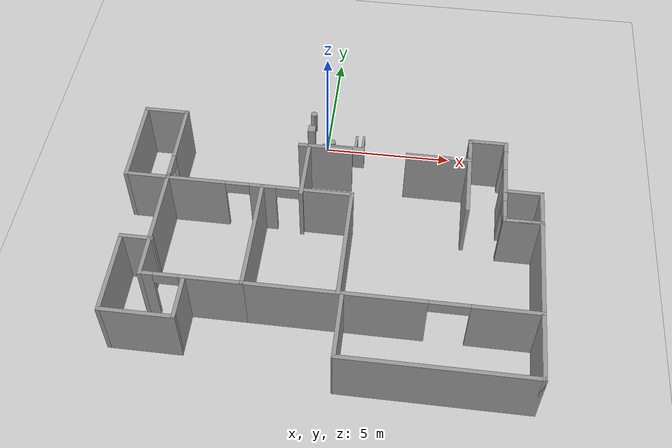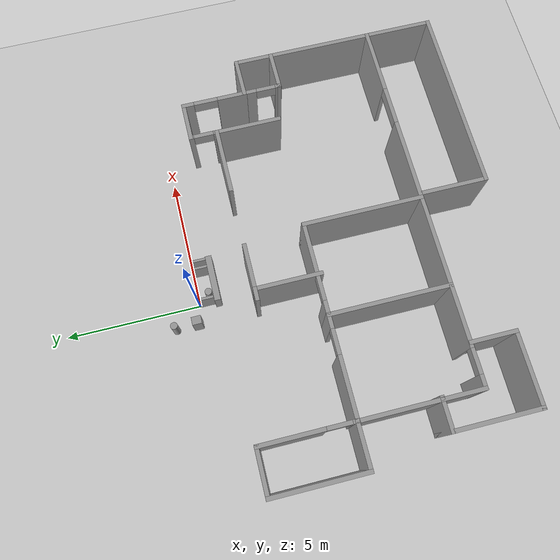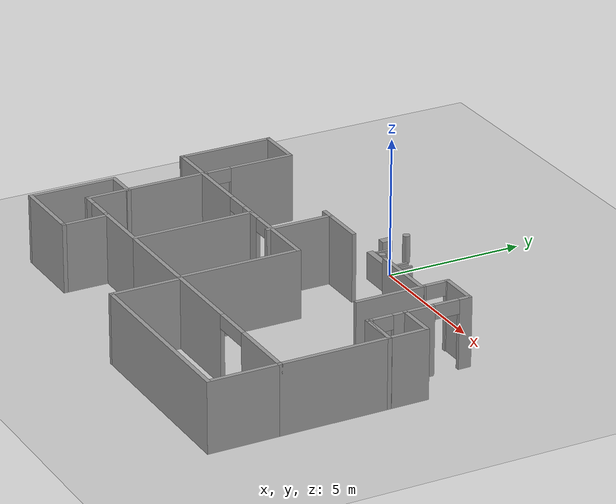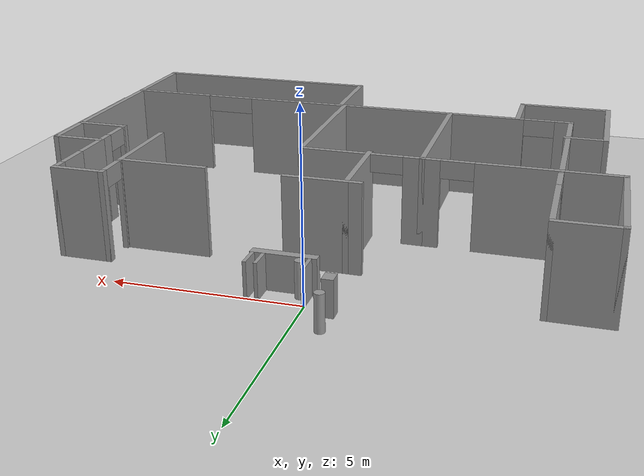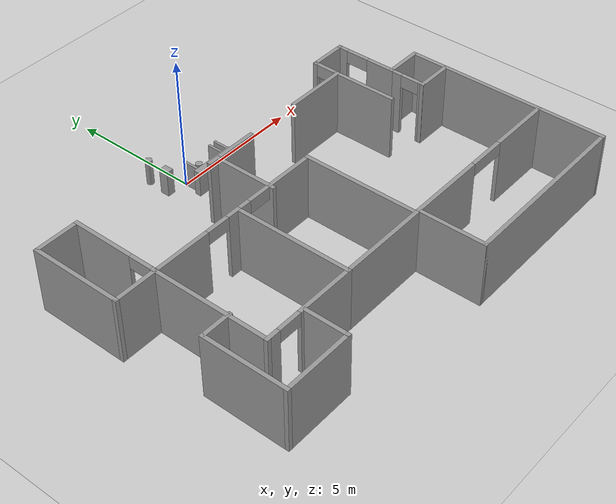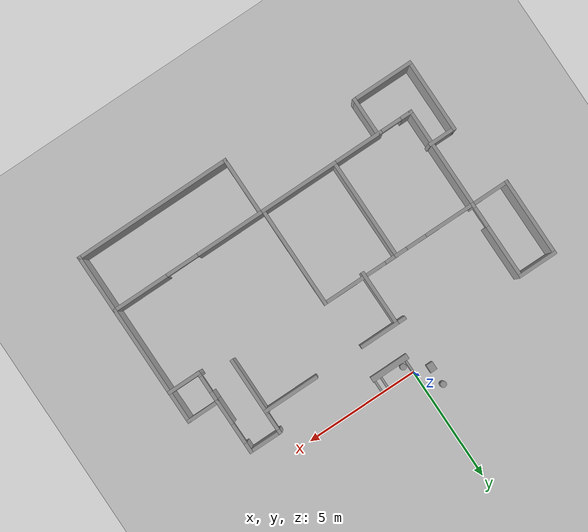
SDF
<sdf version="1.9">
 <world name="default">
  <model name="ground_plane">
   <static>true</static>
   <link name="link">
    <collision name="collision">
     <geometry><plane><normal>0 0 1</normal><size>100 100</size></plane></geometry>
     <surface><friction><ode><mu>100</mu><mu2>50</mu2></ode></friction></surface>
    </collision>
    <visual name="visual">
     <cast_shadows>false</cast_shadows>
     <geometry><plane><normal>0 0 1</normal><size>100 100</size></plane></geometry>
     <material>
      <script><uri>file://media/materials/scripts/gazebo.material</uri><name>Gazebo/Grey</name></script>
     </material>
    </visual>
   </link>
  </model>
  <model name="cma_varanda1">
   <pose>-6.3251799999999996 -2.5931299999999999 0 0 0 0</pose>
   <link name="Wall_0">
    <pose>0.80000000000000004 0 0 0 0 -1.5708</pose>
    <visual name="Wall_0_Visual_0">
     <pose>-0.55249999999999999 0 1.25 0 0 0</pose>
     <geometry><box><size>2.395 0.14999999999999999 2.5</size></box></geometry>
     <material>
      <script><uri>file://media/materials/scripts/gazebo.material</uri><name>Gazebo/Grey</name></script>
      <ambient>1 1 1 1</ambient>
     </material>
    </visual>
    <collision name="Wall_0_Collision_0">
     <geometry><box><size>2.395 0.14999999999999999 2.5</size></box></geometry>
     <pose>-0.55249999999999999 0 1.25 0 0 0</pose>
    </collision>
    <visual name="Wall_0_Visual_1">
     <pose>1.6375 0 1.25 0 0 0</pose>
     <geometry><box><size>0.22500000000000001 0.14999999999999999 2.5</size></box></geometry>
     <material>
      <script><uri>file://media/materials/scripts/gazebo.material</uri><name>Gazebo/Grey</name></script>
      <ambient>1 1 1 1</ambient>
     </material>
    </visual>
    <collision name="Wall_0_Collision_1">
     <geometry><box><size>0.22500000000000001 0.14999999999999999 2.5</size></box></geometry>
     <pose>1.6375 0 1.25 0 0 0</pose>
    </collision>
    <visual name="Wall_0_Visual_2">
     <pose>1.085 0 2.25 0 0 0</pose>
     <geometry><box><size>0.88 0.14999999999999999 0.5</size></box></geometry>
     <material>
      <script><uri>file://media/materials/scripts/gazebo.material</uri><name>Gazebo/Grey</name></script>
      <ambient>1 1 1 1</ambient>
     </material>
    </visual>
    <collision name="Wall_0_Collision_2">
     <geometry><box><size>0.88 0.14999999999999999 0.5</size></box></geometry>
     <pose>1.085 0 2.25 0 0 0</pose>
    </collision>
   </link>
   <link name="Wall_1">
    <collision name="Wall_1_Collision">
     <geometry><box><size>1.75 0.14999999999999999 2.5</size></box></geometry>
     <pose>0 0 1.25 0 0 0</pose>
    </collision>
    <visual name="Wall_1_Visual">
     <pose>0 0 1.25 0 0 0</pose>
     <geometry><box><size>1.75 0.14999999999999999 2.5</size></box></geometry>
     <material>
      <script><uri>file://media/materials/scripts/gazebo.material</uri><name>Gazebo/Grey</name></script>
      <ambient>1 1 1 1</ambient>
     </material>
    </visual>
    <pose>0 -1.675 0 0 0 3.1415899999999999</pose>
   </link>
   <link name="Wall_2">
    <collision name="Wall_2_Collision">
     <geometry><box><size>3.5 0.14999999999999999 2.5</size></box></geometry>
     <pose>0 0 1.25 0 0 0</pose>
    </collision>
    <visual name="Wall_2_Visual">
     <pose>0 0 1.25 0 0 0</pose>
     <geometry><box><size>3.5 0.14999999999999999 2.5</size></box></geometry>
     <material>
      <script><uri>file://media/materials/scripts/gazebo.material</uri><name>Gazebo/Grey</name></script>
      <ambient>1 1 1 1</ambient>
     </material>
    </visual>
    <pose>-0.80000000000000004 0 0 0 0 1.5708</pose>
   </link>
   <link name="Wall_3">
    <collision name="Wall_3_Collision">
     <geometry><box><size>1.75 0.14999999999999999 2.5</size></box></geometry>
     <pose>0 0 1.25 0 0 0</pose>
    </collision>
    <visual name="Wall_3_Visual">
     <pose>0 0 1.25 0 0 0</pose>
     <geometry><box><size>1.75 0.14999999999999999 2.5</size></box></geometry>
     <material>
      <script><uri>file://media/materials/scripts/gazebo.material</uri><name>Gazebo/Grey</name></script>
      <ambient>1 1 1 1</ambient>
     </material>
    </visual>
    <pose>0 1.675 0 0 0 0</pose>
   </link>
   <static>true</static>
  </model>
  <model name="cma_quartos">
   <pose>-2.58169 -7.2645600000000004 0 0 0 0</pose>
   <link name="Wall_0">
    <collision name="Wall_0_Collision">
     <geometry><box><size>4.5 0.14999999999999999 2.5</size></box></geometry>
     <pose>0 0 1.25 0 0 0</pose>
    </collision>
    <visual name="Wall_0_Visual">
     <pose>0 0 1.25 0 0 0</pose>
     <geometry><box><size>4.5 0.14999999999999999 2.5</size></box></geometry>
     <material>
      <script><uri>file://media/materials/scripts/gazebo.material</uri><name>Gazebo/Grey</name></script>
      <ambient>1 1 1 1</ambient>
     </material>
    </visual>
    <pose>0.64500000000000002 0.81000000000000005 0 0 0 -1.5708</pose>
   </link>
   <link name="Wall_1">
    <pose>-1.155 -1.365 0 0 0 3.1415899999999999</pose>
    <visual name="Wall_1_Visual_0">
     <pose>-0.72250000000000003 0 1.25 0 0 0</pose>
     <geometry><box><size>2.3050000000000002 0.14999999999999999 2.5</size></box></geometry>
     <material>
      <script><uri>file://media/materials/scripts/gazebo.material</uri><name>Gazebo/Grey</name></script>
      <ambient>1 1 1 1</ambient>
     </material>
    </visual>
    <collision name="Wall_1_Collision_0">
     <geometry><box><size>2.3050000000000002 0.14999999999999999 2.5</size></box></geometry>
     <pose>-0.72250000000000003 0 1.25 0 0 0</pose>
    </collision>
    <visual name="Wall_1_Visual_1">
     <pose>1.6025 0 1.25 0 0 0</pose>
     <geometry><box><size>0.54500000000000004 0.14999999999999999 2.5</size></box></geometry>
     <material>
      <script><uri>file://media/materials/scripts/gazebo.material</uri><name>Gazebo/Grey</name></script>
      <ambient>1 1 1 1</ambient>
     </material>
    </visual>
    <collision name="Wall_1_Collision_1">
     <geometry><box><size>0.54500000000000004 0.14999999999999999 2.5</size></box></geometry>
     <pose>1.6025 0 1.25 0 0 0</pose>
    </collision>
    <visual name="Wall_1_Visual_2">
     <pose>0.88 0 2.25 0 0 0</pose>
     <geometry><box><size>0.90000000000000002 0.14999999999999999 0.5</size></box></geometry>
     <material>
      <script><uri>file://media/materials/scripts/gazebo.material</uri><name>Gazebo/Grey</name></script>
      <ambient>1 1 1 1</ambient>
     </material>
    </visual>
    <collision name="Wall_1_Collision_2">
     <geometry><box><size>0.90000000000000002 0.14999999999999999 0.5</size></box></geometry>
     <pose>0.88 0 2.25 0 0 0</pose>
    </collision>
   </link>
   <link name="Wall_10">
    <collision name="Wall_10_Collision">
     <geometry><box><size>1.75 0.14999999999999999 2.5</size></box></geometry>
     <pose>0 0 1.25 0 0 0</pose>
    </collision>
    <visual name="Wall_10_Visual">
     <pose>0 0 1.25 0 0 0</pose>
     <geometry><box><size>1.75 0.14999999999999999 2.5</size></box></geometry>
     <material>
      <script><uri>file://media/materials/scripts/gazebo.material</uri><name>Gazebo/Grey</name></script>
      <ambient>1 1 1 1</ambient>
     </material>
    </visual>
    <pose>-1.395 -2.1850000000000001 0 0 0 -1.5708</pose>
   </link>
   <link name="Wall_11">
    <collision name="Wall_11_Collision">
     <geometry><box><size>2.75 0.14999999999999999 2.5</size></box></geometry>
     <pose>0 0 1.25 0 0 0</pose>
    </collision>
    <visual name="Wall_11_Visual">
     <pose>0 0 1.25 0 0 0</pose>
     <geometry><box><size>2.75 0.14999999999999999 2.5</size></box></geometry>
     <material>
      <script><uri>file://media/materials/scripts/gazebo.material</uri><name>Gazebo/Grey</name></script>
      <ambient>1 1 1 1</ambient>
     </material>
    </visual>
    <pose>-2.6949999999999998 -2.9849999999999999 0 0 0 3.1415899999999999</pose>
   </link>
   <link name="Wall_12">
    <collision name="Wall_12_Collision">
     <geometry><box><size>3.25 0.14999999999999999 2.5</size></box></geometry>
     <pose>0 0 1.25 0 0 0</pose>
    </collision>
    <visual name="Wall_12_Visual">
     <pose>0 0 1.25 0 0 0</pose>
     <geometry><box><size>3.25 0.14999999999999999 2.5</size></box></geometry>
     <material>
      <script><uri>file://media/materials/scripts/gazebo.material</uri><name>Gazebo/Grey</name></script>
      <ambient>1 1 1 1</ambient>
     </material>
    </visual>
    <pose>-3.9950000000000001 -1.4350000000000001 0 0 0 1.5708</pose>
   </link>
   <link name="Wall_13">
    <collision name="Wall_13_Collision">
     <geometry><box><size>1.25 0.14999999999999999 2.5</size></box></geometry>
     <pose>0 0 1.25 0 0 0</pose>
    </collision>
    <visual name="Wall_13_Visual">
     <pose>0 0 1.25 0 0 0</pose>
     <geometry><box><size>1.25 0.14999999999999999 2.5</size></box></geometry>
     <material>
      <script><uri>file://media/materials/scripts/gazebo.material</uri><name>Gazebo/Grey</name></script>
      <ambient>1 1 1 1</ambient>
     </material>
    </visual>
    <pose>-3.4449999999999998 0.115 0 0 0 0</pose>
   </link>
   <link name="Wall_2">
    <collision name="Wall_2_Collision">
     <geometry><box><size>4.5 0.14999999999999999 2.5</size></box></geometry>
     <pose>0 0 1.25 0 0 0</pose>
    </collision>
    <visual name="Wall_2_Visual">
     <pose>0 0 1.25 0 0 0</pose>
     <geometry><box><size>4.5 0.14999999999999999 2.5</size></box></geometry>
     <material>
      <script><uri>file://media/materials/scripts/gazebo.material</uri><name>Gazebo/Grey</name></script>
      <ambient>1 1 1 1</ambient>
     </material>
    </visual>
    <pose>-2.9550000000000001 0.81000000000000005 0 0 0 1.5708</pose>
   </link>
   <link name="Wall_3">
    <pose>-1.155 2.9849999999999999 0 0 0 0</pose>
    <visual name="Wall_3_Visual_0">
     <pose>-0.73250000000000004 0 1.25 0 0 0</pose>
     <geometry><box><size>2.2850000000000001 0.14999999999999999 2.5</size></box></geometry>
     <material>
      <script><uri>file://media/materials/scripts/gazebo.material</uri><name>Gazebo/Grey</name></script>
      <ambient>1 1 1 1</ambient>
     </material>
    </visual>
    <collision name="Wall_3_Collision_0">
     <geometry><box><size>2.2850000000000001 0.14999999999999999 2.5</size></box></geometry>
     <pose>-0.73250000000000004 0 1.25 0 0 0</pose>
    </collision>
    <visual name="Wall_3_Visual_1">
     <pose>1.5925 0 1.25 0 0 0</pose>
     <geometry><box><size>0.56499999999999995 0.14999999999999999 2.5</size></box></geometry>
     <material>
      <script><uri>file://media/materials/scripts/gazebo.material</uri><name>Gazebo/Grey</name></script>
      <ambient>1 1 1 1</ambient>
     </material>
    </visual>
    <collision name="Wall_3_Collision_1">
     <geometry><box><size>0.56499999999999995 0.14999999999999999 2.5</size></box></geometry>
     <pose>1.5925 0 1.25 0 0 0</pose>
    </collision>
    <visual name="Wall_3_Visual_2">
     <pose>0.85999999999999999 0 2.25 0 0 0</pose>
     <geometry><box><size>0.90000000000000002 0.14999999999999999 0.5</size></box></geometry>
     <material>
      <script><uri>file://media/materials/scripts/gazebo.material</uri><name>Gazebo/Grey</name></script>
      <ambient>1 1 1 1</ambient>
     </material>
    </visual>
    <collision name="Wall_3_Collision_2">
     <geometry><box><size>0.90000000000000002 0.14999999999999999 0.5</size></box></geometry>
     <pose>0.85999999999999999 0 2.25 0 0 0</pose>
    </collision>
   </link>
   <link name="Wall_6">
    <pose>2.3199999999999998 2.9849999999999999 0 0 0 0</pose>
    <visual name="Wall_6_Visual_0">
     <pose>-1.4575 0 1.25 0 0 0</pose>
     <geometry><box><size>0.58499999999999996 0.14999999999999999 2.5</size></box></geometry>
     <material>
      <script><uri>file://media/materials/scripts/gazebo.material</uri><name>Gazebo/Grey</name></script>
      <ambient>1 1 1 1</ambient>
     </material>
    </visual>
    <collision name="Wall_6_Collision_0">
     <geometry><box><size>0.58499999999999996 0.14999999999999999 2.5</size></box></geometry>
     <pose>-1.4575 0 1.25 0 0 0</pose>
    </collision>
    <visual name="Wall_6_Visual_1">
     <pose>0.74250000000000005 0 1.25 0 0 0</pose>
     <geometry><box><size>2.0150000000000001 0.14999999999999999 2.5</size></box></geometry>
     <material>
      <script><uri>file://media/materials/scripts/gazebo.material</uri><name>Gazebo/Grey</name></script>
      <ambient>1 1 1 1</ambient>
     </material>
    </visual>
    <collision name="Wall_6_Collision_1">
     <geometry><box><size>2.0150000000000001 0.14999999999999999 2.5</size></box></geometry>
     <pose>0.74250000000000005 0 1.25 0 0 0</pose>
    </collision>
    <visual name="Wall_6_Visual_2">
     <pose>-0.71499999999999997 0 2.25 0 0 0</pose>
     <geometry><box><size>0.90000000000000002 0.14999999999999999 0.5</size></box></geometry>
     <material>
      <script><uri>file://media/materials/scripts/gazebo.material</uri><name>Gazebo/Grey</name></script>
      <ambient>1 1 1 1</ambient>
     </material>
    </visual>
    <collision name="Wall_6_Collision_2">
     <geometry><box><size>0.90000000000000002 0.14999999999999999 0.5</size></box></geometry>
     <pose>-0.71499999999999997 0 2.25 0 0 0</pose>
    </collision>
   </link>
   <link name="Wall_7">
    <collision name="Wall_7_Collision">
     <geometry><box><size>4.5 0.14999999999999999 2.5</size></box></geometry>
     <pose>0 0 1.25 0 0 0</pose>
    </collision>
    <visual name="Wall_7_Visual">
     <pose>0 0 1.25 0 0 0</pose>
     <geometry><box><size>4.5 0.14999999999999999 2.5</size></box></geometry>
     <material>
      <script><uri>file://media/materials/scripts/gazebo.material</uri><name>Gazebo/Grey</name></script>
      <ambient>1 1 1 1</ambient>
     </material>
    </visual>
    <pose>3.9950000000000001 0.81000000000000005 0 0 0 -1.5708</pose>
   </link>
   <link name="Wall_8">
    <collision name="Wall_8_Collision">
     <geometry><box><size>3.5 0.14999999999999999 2.5</size></box></geometry>
     <pose>0 0 1.25 0 0 0</pose>
    </collision>
    <visual name="Wall_8_Visual">
     <pose>0 0 1.25 0 0 0</pose>
     <geometry><box><size>3.5 0.14999999999999999 2.5</size></box></geometry>
     <material>
      <script><uri>file://media/materials/scripts/gazebo.material</uri><name>Gazebo/Grey</name></script>
      <ambient>1 1 1 1</ambient>
     </material>
    </visual>
    <pose>2.3199999999999998 -1.365 0 0 0 3.1415899999999999</pose>
   </link>
   <static>true</static>
  </model>
  <model name="cma_parede_t">
   <pose>0.15995500000000001 -3.2401599999999999 0 0 0 0</pose>
   <link name="Wall_15">
    <collision name="Wall_15_Collision">
     <geometry><box><size>2.5 0.14999999999999999 2.5</size></box></geometry>
     <pose>0 0 1.25 0 0 0</pose>
    </collision>
    <visual name="Wall_15_Visual">
     <pose>0 0 1.25 0 0 0</pose>
     <geometry><box><size>2.5 0.14999999999999999 2.5</size></box></geometry>
     <material>
      <script><uri>file://media/materials/scripts/gazebo.material</uri><name>Gazebo/Grey</name></script>
      <ambient>1 1 1 1</ambient>
     </material>
    </visual>
    <pose>-0.625 0 0 0 0 1.5708</pose>
   </link>
   <link name="Wall_16">
    <collision name="Wall_16_Collision">
     <geometry><box><size>0.5 0.14999999999999999 2.5</size></box></geometry>
     <pose>0 0 1.25 0 0 0</pose>
    </collision>
    <visual name="Wall_16_Visual">
     <pose>0 0 1.25 0 0 0</pose>
     <geometry><box><size>0.5 0.14999999999999999 2.5</size></box></geometry>
     <material>
      <script><uri>file://media/materials/scripts/gazebo.material</uri><name>Gazebo/Grey</name></script>
      <ambient>1 1 1 1</ambient>
     </material>
    </visual>
    <pose>-0.80000000000000004 1.175 0 0 0 3.1415899999999999</pose>
   </link>
   <link name="Wall_18">
    <collision name="Wall_18_Collision">
     <geometry><box><size>1.75 0.14999999999999999 2.5</size></box></geometry>
     <pose>0 0 1.25 0 0 0</pose>
    </collision>
    <visual name="Wall_18_Visual">
     <pose>0 0 1.25 0 0 0</pose>
     <geometry><box><size>1.75 0.14999999999999999 2.5</size></box></geometry>
     <material>
      <script><uri>file://media/materials/scripts/gazebo.material</uri><name>Gazebo/Grey</name></script>
      <ambient>1 1 1 1</ambient>
     </material>
    </visual>
    <pose>0.17499999999999999 1.175 0 0 0 0</pose>
   </link>
   <static>true</static>
  </model>
  <model name="cma_parede_L">
   <pose>4.97628 -6.6999199999999997 0 0 0 0</pose>
   <link name="Wall_0">
    <pose>0 -1.925 0 0 0 0</pose>
    <visual name="Wall_0_Visual_0">
     <pose>-1.9850000000000001 0 1.25 0 0 0</pose>
     <geometry><box><size>3.0299999999999998 0.14999999999999999 2.5</size></box></geometry>
     <material>
      <script><uri>file://media/materials/scripts/gazebo.material</uri><name>Gazebo/Grey</name></script>
      <ambient>1 1 1 1</ambient>
     </material>
    </visual>
    <collision name="Wall_0_Collision_0">
     <geometry><box><size>3.0299999999999998 0.14999999999999999 2.5</size></box></geometry>
     <pose>-1.9850000000000001 0 1.25 0 0 0</pose>
    </collision>
    <visual name="Wall_0_Visual_1">
     <pose>2.2400000000000002 0 1.25 0 0 0</pose>
     <geometry><box><size>2.52 0.14999999999999999 2.5</size></box></geometry>
     <material>
      <script><uri>file://media/materials/scripts/gazebo.material</uri><name>Gazebo/Grey</name></script>
      <ambient>1 1 1 1</ambient>
     </material>
    </visual>
    <collision name="Wall_0_Collision_1">
     <geometry><box><size>2.52 0.14999999999999999 2.5</size></box></geometry>
     <pose>2.2400000000000002 0 1.25 0 0 0</pose>
    </collision>
    <visual name="Wall_0_Visual_2">
     <pose>0.255 0 2.25 0 0 0</pose>
     <geometry><box><size>1.45 0.14999999999999999 0.5</size></box></geometry>
     <material>
      <script><uri>file://media/materials/scripts/gazebo.material</uri><name>Gazebo/Grey</name></script>
      <ambient>1 1 1 1</ambient>
     </material>
    </visual>
    <collision name="Wall_0_Collision_2">
     <geometry><box><size>1.45 0.14999999999999999 0.5</size></box></geometry>
     <pose>0.255 0 2.25 0 0 0</pose>
    </collision>
   </link>
   <link name="Wall_1">
    <collision name="Wall_1_Collision">
     <geometry><box><size>4 0.14999999999999999 2.5</size></box></geometry>
     <pose>0 0 1.25 0 0 0</pose>
    </collision>
    <visual name="Wall_1_Visual">
     <pose>0 0 1.25 0 0 0</pose>
     <geometry><box><size>4 0.14999999999999999 2.5</size></box></geometry>
     <material>
      <script><uri>file://media/materials/scripts/gazebo.material</uri><name>Gazebo/Grey</name></script>
      <ambient>1 1 1 1</ambient>
     </material>
    </visual>
    <pose>3.4249999999999998 0 0 0 0 1.5708</pose>
   </link>
   <link name="Wall_2">
    <collision name="Wall_2_Collision">
     <geometry><box><size>1.5 0.14999999999999999 2.5</size></box></geometry>
     <pose>0 0 1.25 0 0 0</pose>
    </collision>
    <visual name="Wall_2_Visual">
     <pose>0 0 1.25 0 0 0</pose>
     <geometry><box><size>1.5 0.14999999999999999 2.5</size></box></geometry>
     <material>
      <script><uri>file://media/materials/scripts/gazebo.material</uri><name>Gazebo/Grey</name></script>
      <ambient>1 1 1 1</ambient>
     </material>
    </visual>
    <pose>2.75 1.925 0 0 0 3.1415899999999999</pose>
   </link>
   <static>true</static>
  </model>
  <model name="cma_lavabo">
   <pose>7.7229700000000001 -4.0930200000000001 0 0 0 0</pose>
   <link name="Wall_4">
    <pose>-0.67500000000000004 0 0 0 0 1.5708</pose>
    <visual name="Wall_4_Visual_0">
     <pose>-0.63500000000000001 0 1.25 0 0 0</pose>
     <geometry><box><size>0.23000000000000001 0.14999999999999999 2.5</size></box></geometry>
     <material>
      <script><uri>file://media/materials/scripts/gazebo.material</uri><name>Gazebo/Grey</name></script>
      <ambient>1 1 1 1</ambient>
     </material>
    </visual>
    <collision name="Wall_4_Collision_0">
     <geometry><box><size>0.23000000000000001 0.14999999999999999 2.5</size></box></geometry>
     <pose>-0.63500000000000001 0 1.25 0 0 0</pose>
    </collision>
    <visual name="Wall_4_Visual_1">
     <pose>0.47999999999999998 0 1.25 0 0 0</pose>
     <geometry><box><size>0.54000000000000004 0.14999999999999999 2.5</size></box></geometry>
     <material>
      <script><uri>file://media/materials/scripts/gazebo.material</uri><name>Gazebo/Grey</name></script>
      <ambient>1 1 1 1</ambient>
     </material>
    </visual>
    <collision name="Wall_4_Collision_1">
     <geometry><box><size>0.54000000000000004 0.14999999999999999 2.5</size></box></geometry>
     <pose>0.47999999999999998 0 1.25 0 0 0</pose>
    </collision>
    <visual name="Wall_4_Visual_2">
     <pose>-0.155 0 2.25 0 0 0</pose>
     <geometry><box><size>0.72999999999999998 0.14999999999999999 0.5</size></box></geometry>
     <material>
      <script><uri>file://media/materials/scripts/gazebo.material</uri><name>Gazebo/Grey</name></script>
      <ambient>1 1 1 1</ambient>
     </material>
    </visual>
    <collision name="Wall_4_Collision_2">
     <geometry><box><size>0.72999999999999998 0.14999999999999999 0.5</size></box></geometry>
     <pose>-0.155 0 2.25 0 0 0</pose>
    </collision>
   </link>
   <link name="Wall_5">
    <collision name="Wall_5_Collision">
     <geometry><box><size>1.5 0.14999999999999999 2.5</size></box></geometry>
     <pose>0 0 1.25 0 0 0</pose>
    </collision>
    <visual name="Wall_5_Visual">
     <pose>0 0 1.25 0 0 0</pose>
     <geometry><box><size>1.5 0.14999999999999999 2.5</size></box></geometry>
     <material>
      <script><uri>file://media/materials/scripts/gazebo.material</uri><name>Gazebo/Grey</name></script>
      <ambient>1 1 1 1</ambient>
     </material>
    </visual>
    <pose>0 0.67500000000000004 0 0 0 0</pose>
   </link>
   <link name="Wall_6">
    <collision name="Wall_6_Collision">
     <geometry><box><size>1.5 0.14999999999999999 2.5</size></box></geometry>
     <pose>0 0 1.25 0 0 0</pose>
    </collision>
    <visual name="Wall_6_Visual">
     <pose>0 0 1.25 0 0 0</pose>
     <geometry><box><size>1.5 0.14999999999999999 2.5</size></box></geometry>
     <material>
      <script><uri>file://media/materials/scripts/gazebo.material</uri><name>Gazebo/Grey</name></script>
      <ambient>1 1 1 1</ambient>
     </material>
    </visual>
    <pose>0.67500000000000004 0 0 0 0 -1.5708</pose>
   </link>
   <link name="Wall_7">
    <collision name="Wall_7_Collision">
     <geometry><box><size>1.5 0.14999999999999999 2.5</size></box></geometry>
     <pose>0 0 1.25 0 0 0</pose>
    </collision>
    <visual name="Wall_7_Visual">
     <pose>0 0 1.25 0 0 0</pose>
     <geometry><box><size>1.5 0.14999999999999999 2.5</size></box></geometry>
     <material>
      <script><uri>file://media/materials/scripts/gazebo.material</uri><name>Gazebo/Grey</name></script>
      <ambient>1 1 1 1</ambient>
     </material>
    </visual>
    <pose>0 -0.67500000000000004 0 0 0 3.1415899999999999</pose>
   </link>
   <static>true</static>
  </model>
  <model name="cma_L2">
   <pose>4.5168299999999997 -3.24587 0 0 0 0</pose>
   <link name="Wall_10">
    <collision name="Wall_10_Collision">
     <geometry><box><size>2.5 0.14999999999999999 2.5</size></box></geometry>
     <pose>0 0 1.25 0 0 0</pose>
    </collision>
    <visual name="Wall_10_Visual">
     <pose>0 0 1.25 0 0 0</pose>
     <geometry><box><size>2.5 0.14999999999999999 2.5</size></box></geometry>
     <material>
      <script><uri>file://media/materials/scripts/gazebo.material</uri><name>Gazebo/Grey</name></script>
      <ambient>1 1 1 1</ambient>
     </material>
    </visual>
    <pose>1.175 0 0 0 0 -1.5708</pose>
   </link>
   <link name="Wall_9">
    <collision name="Wall_9_Collision">
     <geometry><box><size>2.5 0.14999999999999999 2.5</size></box></geometry>
     <pose>0 0 1.25 0 0 0</pose>
    </collision>
    <visual name="Wall_9_Visual">
     <pose>0 0 1.25 0 0 0</pose>
     <geometry><box><size>2.5 0.14999999999999999 2.5</size></box></geometry>
     <material>
      <script><uri>file://media/materials/scripts/gazebo.material</uri><name>Gazebo/Grey</name></script>
      <ambient>1 1 1 1</ambient>
     </material>
    </visual>
    <pose>0 1.175 0 0 0 0</pose>
   </link>
   <static>true</static>
  </model>
  <model name="cma_L3">
   <pose>6.3722099999999999 -2.2602199999999999 0 0 0 0</pose>
   <link name="Wall_12">
    <pose>-0.67500000000000004 0.75 0 0 0 1.5708</pose>
    <visual name="Wall_12_Visual_0">
     <pose>-0.46000000000000002 0 1.25 0 0 0</pose>
     <geometry><box><size>0.080000000000000002 0.14999999999999999 2.5</size></box></geometry>
     <material>
      <script><uri>file://media/materials/scripts/gazebo.material</uri><name>Gazebo/Grey</name></script>
      <ambient>1 1 1 1</ambient>
     </material>
    </visual>
    <collision name="Wall_12_Collision_0">
     <geometry><box><size>0.080000000000000002 0.14999999999999999 2.5</size></box></geometry>
     <pose>-0.46000000000000002 0 1.25 0 0 0</pose>
    </collision>
    <visual name="Wall_12_Visual_1">
     <pose>0.40500000000000003 0 1.25 0 0 0</pose>
     <geometry><box><size>0.19 0.14999999999999999 2.5</size></box></geometry>
     <material>
      <script><uri>file://media/materials/scripts/gazebo.material</uri><name>Gazebo/Grey</name></script>
      <ambient>1 1 1 1</ambient>
     </material>
    </visual>
    <collision name="Wall_12_Collision_1">
     <geometry><box><size>0.19 0.14999999999999999 2.5</size></box></geometry>
     <pose>0.40500000000000003 0 1.25 0 0 0</pose>
    </collision>
    <visual name="Wall_12_Visual_2">
     <pose>-0.055 0 2.25 0 0 0</pose>
     <geometry><box><size>0.72999999999999998 0.14999999999999999 0.5</size></box></geometry>
     <material>
      <script><uri>file://media/materials/scripts/gazebo.material</uri><name>Gazebo/Grey</name></script>
      <ambient>1 1 1 1</ambient>
     </material>
    </visual>
    <collision name="Wall_12_Collision_2">
     <geometry><box><size>0.72999999999999998 0.14999999999999999 0.5</size></box></geometry>
     <pose>-0.055 0 2.25 0 0 0</pose>
    </collision>
   </link>
   <link name="Wall_13">
    <collision name="Wall_13_Collision">
     <geometry><box><size>1.5 0.14999999999999999 2.5</size></box></geometry>
     <pose>0 0 1.25 0 0 0</pose>
    </collision>
    <visual name="Wall_13_Visual">
     <pose>0 0 1.25 0 0 0</pose>
     <geometry><box><size>1.5 0.14999999999999999 2.5</size></box></geometry>
     <material>
      <script><uri>file://media/materials/scripts/gazebo.material</uri><name>Gazebo/Grey</name></script>
      <ambient>1 1 1 1</ambient>
     </material>
    </visual>
    <pose>0 1.175 0 0 0 0</pose>
   </link>
   <link name="Wall_14">
    <pose>0.67500000000000004 0 0 0 0 -1.5708</pose>
    <visual name="Wall_14_Visual_0">
     <pose>-1.0175000000000001 0 1.25 0 0 0</pose>
     <geometry><box><size>0.46500000000000002 0.14999999999999999 2.5</size></box></geometry>
     <material>
      <script><uri>file://media/materials/scripts/gazebo.material</uri><name>Gazebo/Grey</name></script>
      <ambient>1 1 1 1</ambient>
     </material>
    </visual>
    <collision name="Wall_14_Collision_0">
     <geometry><box><size>0.46500000000000002 0.14999999999999999 2.5</size></box></geometry>
     <pose>-1.0175000000000001 0 1.25 0 0 0</pose>
    </collision>
    <visual name="Wall_14_Visual_1">
     <pose>0.6825 0 1.25 0 0 0</pose>
     <geometry><box><size>1.135 0.14999999999999999 2.5</size></box></geometry>
     <material>
      <script><uri>file://media/materials/scripts/gazebo.material</uri><name>Gazebo/Grey</name></script>
      <ambient>1 1 1 1</ambient>
     </material>
    </visual>
    <collision name="Wall_14_Collision_1">
     <geometry><box><size>1.135 0.14999999999999999 2.5</size></box></geometry>
     <pose>0.6825 0 1.25 0 0 0</pose>
    </collision>
    <visual name="Wall_14_Visual_2">
     <pose>-0.33500000000000002 0 2.25 0 0 0</pose>
     <geometry><box><size>0.90000000000000002 0.14999999999999999 0.5</size></box></geometry>
     <material>
      <script><uri>file://media/materials/scripts/gazebo.material</uri><name>Gazebo/Grey</name></script>
      <ambient>1 1 1 1</ambient>
     </material>
    </visual>
    <collision name="Wall_14_Collision_2">
     <geometry><box><size>0.90000000000000002 0.14999999999999999 0.5</size></box></geometry>
     <pose>-0.33500000000000002 0 2.25 0 0 0</pose>
    </collision>
   </link>
   <static>true</static>
  </model>
  <model name="cma_U">
   <pose>4.9789500000000002 -9.92408 0 0 0 0</pose>
   <link name="Wall_16">
    <collision name="Wall_16_Collision">
     <geometry><box><size>2.5 0.14999999999999999 2.5</size></box></geometry>
     <pose>0 0 1.25 0 0 0</pose>
    </collision>
    <visual name="Wall_16_Visual">
     <pose>0 0 1.25 0 0 0</pose>
     <geometry><box><size>2.5 0.14999999999999999 2.5</size></box></geometry>
     <material>
      <script><uri>file://media/materials/scripts/gazebo.material</uri><name>Gazebo/Grey</name></script>
      <ambient>1 1 1 1</ambient>
     </material>
    </visual>
    <pose>-3.4249999999999998 0 0 0 0 -1.5708</pose>
   </link>
   <link name="Wall_17">
    <collision name="Wall_17_Collision">
     <geometry><box><size>7 0.14999999999999999 2.5</size></box></geometry>
     <pose>0 0 1.25 0 0 0</pose>
    </collision>
    <visual name="Wall_17_Visual">
     <pose>0 0 1.25 0 0 0</pose>
     <geometry><box><size>7 0.14999999999999999 2.5</size></box></geometry>
     <material>
      <script><uri>file://media/materials/scripts/gazebo.material</uri><name>Gazebo/Grey</name></script>
      <ambient>1 1 1 1</ambient>
     </material>
    </visual>
    <pose>0 -1.175 0 0 0 0</pose>
   </link>
   <link name="Wall_18">
    <collision name="Wall_18_Collision">
     <geometry><box><size>2.5 0.14999999999999999 2.5</size></box></geometry>
     <pose>0 0 1.25 0 0 0</pose>
    </collision>
    <visual name="Wall_18_Visual">
     <pose>0 0 1.25 0 0 0</pose>
     <geometry><box><size>2.5 0.14999999999999999 2.5</size></box></geometry>
     <material>
      <script><uri>file://media/materials/scripts/gazebo.material</uri><name>Gazebo/Grey</name></script>
      <ambient>1 1 1 1</ambient>
     </material>
    </visual>
    <pose>3.4249999999999998 0 0 0 0 1.5708</pose>
   </link>
   <static>true</static>
  </model>
  <model name="cma_armario">
   <link name="link_0">
    <pose>1.3215699999999999 0.88517800000000002 0.5 0 0 0</pose>
    <inertial>
     <mass>0.40237600000000001</mass>
     <inertia>
      <ixx>0.0353686</ixx>
      <ixy>0</ixy>
      <ixz>0</ixz>
      <iyy>0.13261600000000001</iyy>
      <iyz>0</iyz>
      <izz>0.100922</izz>
     </inertia>
    </inertial>
    <visual name="visual">
     <geometry><box><size>1.7187699999999999 0.234069 1</size></box></geometry>
     <material>
      <lighting>true</lighting>
      <script><uri>file://media/materials/scripts/gazebo.material</uri><name>Gazebo/Grey</name></script>
      <ambient>0.300000012 0.300000012 0.300000012 1</ambient>
      <diffuse>0.699999988 0.699999988 0.699999988 1</diffuse>
      <specular>0.00999999978 0.00999999978 0.00999999978 1</specular>
      <emissive>0 0 0 1</emissive>
     </material>
    </visual>
    <collision name="collision">
     <geometry><box><size>1.7187699999999999 0.234069 1</size></box></geometry>
     <surface>
      <friction>
       <ode><mu>1</mu><mu2>1</mu2><fdir1>0 0 0</fdir1><slip1>0</slip1><slip2>0</slip2></ode>
       <torsional>
        <coefficient>1</coefficient>
        <patch_radius>0</patch_radius>
        <surface_radius>0</surface_radius>
        <use_patch_radius>true</use_patch_radius>
        <ode><slip>0</slip></ode>
       </torsional>
      </friction>
      <bounce><restitution_coefficient>0</restitution_coefficient><threshold>1000000</threshold></bounce>
      <contact>
       <collide_without_contact>false</collide_without_contact>
       <collide_without_contact_bitmask>1</collide_without_contact_bitmask>
       <collide_bitmask>1</collide_bitmask>
       <ode>
        <soft_cfm>0</soft_cfm>
        <soft_erp>0.20000000000000001</soft_erp>
        <kp>10000000000000</kp>
        <kd>1</kd>
        <max_vel>0.01</max_vel>
        <min_depth>0</min_depth>
       </ode>
       <bullet>
        <split_impulse>true</split_impulse>
        <split_impulse_penetration_threshold>-0.01</split_impulse_penetration_threshold>
        <soft_cfm>0</soft_cfm>
        <soft_erp>0.20000000000000001</soft_erp>
        <kp>10000000000000</kp>
        <kd>1</kd>
       </bullet>
      </contact>
     </surface>
    </collision>
   </link>
   <static>false</static>
   <pose>-0.61410399999999998 -1.5923099999999999 0 0 0 0.00082299999999999995</pose>
  </model>
  <model name="cma_mesa_pc">
   <link name="link_0">
    <pose>-1.3653299999999999 -0.59986600000000001 0 0 0 0</pose>
    <inertial>
     <mass>0.055153899999999999</mass>
     <inertia>
      <ixx>0.00617776</ixx>
      <ixy>0</ixy>
      <ixz>0</ixz>
      <iyy>0.0046367999999999999</iyy>
      <iyz>0</iyz>
      <izz>0.00162222</izz>
     </inertia>
    </inertial>
    <visual name="visual">
     <geometry><box><size>0.094007999999999994 0.58662599999999998 1</size></box></geometry>
     <material>
      <lighting>true</lighting>
      <script><uri>file://media/materials/scripts/gazebo.material</uri><name>Gazebo/Grey</name></script>
      <ambient>0.300000012 0.300000012 0.300000012 1</ambient>
      <diffuse>0.699999988 0.699999988 0.699999988 1</diffuse>
      <specular>0.00999999978 0.00999999978 0.00999999978 1</specular>
      <emissive>0 0 0 1</emissive>
     </material>
    </visual>
    <collision name="collision">
     <geometry><box><size>0.094007999999999994 0.58662599999999998 1</size></box></geometry>
     <surface>
      <friction>
       <ode><mu>1</mu><mu2>1</mu2><fdir1>0 0 0</fdir1><slip1>0</slip1><slip2>0</slip2></ode>
       <torsional>
        <coefficient>1</coefficient>
        <patch_radius>0</patch_radius>
        <surface_radius>0</surface_radius>
        <use_patch_radius>true</use_patch_radius>
        <ode><slip>0</slip></ode>
       </torsional>
      </friction>
      <bounce><restitution_coefficient>0</restitution_coefficient><threshold>1000000</threshold></bounce>
      <contact>
       <collide_without_contact>false</collide_without_contact>
       <collide_without_contact_bitmask>1</collide_without_contact_bitmask>
       <collide_bitmask>1</collide_bitmask>
       <ode>
        <soft_cfm>0</soft_cfm>
        <soft_erp>0.20000000000000001</soft_erp>
        <kp>10000000000000</kp>
        <kd>1</kd>
        <max_vel>0.01</max_vel>
        <min_depth>0</min_depth>
       </ode>
       <bullet>
        <split_impulse>true</split_impulse>
        <split_impulse_penetration_threshold>-0.01</split_impulse_penetration_threshold>
        <soft_cfm>0</soft_cfm>
        <soft_erp>0.20000000000000001</soft_erp>
        <kp>10000000000000</kp>
        <kd>1</kd>
       </bullet>
      </contact>
     </surface>
    </collision>
   </link>
   <link name="link_0_clone">
    <pose>-0.18005299999999999 -0.60318099999999997 0 0 0 0</pose>
    <inertial>
     <mass>0.055153899999999999</mass>
     <inertia>
      <ixx>0.00617776</ixx>
      <ixy>0</ixy>
      <ixz>0</ixz>
      <iyy>0.0046367999999999999</iyy>
      <iyz>0</iyz>
      <izz>0.00162222</izz>
     </inertia>
    </inertial>
    <visual name="visual">
     <geometry><box><size>0.094007999999999994 0.58662599999999998 1</size></box></geometry>
     <material>
      <lighting>true</lighting>
      <script><uri>file://media/materials/scripts/gazebo.material</uri><name>Gazebo/Grey</name></script>
      <ambient>0.300000012 0.300000012 0.300000012 1</ambient>
      <diffuse>0.699999988 0.699999988 0.699999988 1</diffuse>
      <specular>0.00999999978 0.00999999978 0.00999999978 1</specular>
      <emissive>0 0 0 1</emissive>
      <shader type="pixel"/>
     </material>
    </visual>
    <collision name="collision">
     <geometry><box><size>0.094007999999999994 0.58662599999999998 1</size></box></geometry>
     <surface>
      <friction>
       <ode><mu>1</mu><mu2>1</mu2><fdir1>0 0 0</fdir1><slip1>0</slip1><slip2>0</slip2></ode>
       <torsional>
        <coefficient>1</coefficient>
        <patch_radius>0</patch_radius>
        <surface_radius>0</surface_radius>
        <use_patch_radius>true</use_patch_radius>
        <ode><slip>0</slip></ode>
       </torsional>
      </friction>
      <bounce><restitution_coefficient>0</restitution_coefficient><threshold>1000000</threshold></bounce>
      <contact>
       <collide_without_contact>false</collide_without_contact>
       <collide_without_contact_bitmask>1</collide_without_contact_bitmask>
       <collide_bitmask>1</collide_bitmask>
       <ode>
        <soft_cfm>0</soft_cfm>
        <soft_erp>0.20000000000000001</soft_erp>
        <kp>10000000000000</kp>
        <kd>1</kd>
        <max_vel>0.01</max_vel>
        <min_depth>0</min_depth>
       </ode>
       <bullet>
        <split_impulse>true</split_impulse>
        <split_impulse_penetration_threshold>-0.01</split_impulse_penetration_threshold>
        <soft_cfm>0</soft_cfm>
        <soft_erp>0.20000000000000001</soft_erp>
        <kp>10000000000000</kp>
        <kd>1</kd>
       </bullet>
      </contact>
     </surface>
    </collision>
   </link>
   <link name="link_0_clone_clone">
    <pose>0.10173599999999999 -0.60185200000000005 0 0 0 0</pose>
    <inertial>
     <mass>0.055153899999999999</mass>
     <inertia>
      <ixx>0.00617776</ixx>
      <ixy>0</ixy>
      <ixz>0</ixz>
      <iyy>0.0046367999999999999</iyy>
      <iyz>0</iyz>
      <izz>0.00162222</izz>
     </inertia>
    </inertial>
    <visual name="visual">
     <geometry><box><size>0.094007999999999994 0.58662599999999998 1</size></box></geometry>
     <material>
      <lighting>true</lighting>
      <script><uri>file://media/materials/scripts/gazebo.material</uri><name>Gazebo/Grey</name></script>
      <ambient>0.300000012 0.300000012 0.300000012 1</ambient>
      <diffuse>0.699999988 0.699999988 0.699999988 1</diffuse>
      <specular>0.00999999978 0.00999999978 0.00999999978 1</specular>
      <emissive>0 0 0 1</emissive>
      <shader type="pixel"/>
     </material>
    </visual>
    <collision name="collision">
     <geometry><box><size>0.094007999999999994 0.58662599999999998 1</size></box></geometry>
     <surface>
      <friction>
       <ode><mu>1</mu><mu2>1</mu2><fdir1>0 0 0</fdir1><slip1>0</slip1><slip2>0</slip2></ode>
       <torsional>
        <coefficient>1</coefficient>
        <patch_radius>0</patch_radius>
        <surface_radius>0</surface_radius>
        <use_patch_radius>true</use_patch_radius>
        <ode><slip>0</slip></ode>
       </torsional>
      </friction>
      <bounce><restitution_coefficient>0</restitution_coefficient><threshold>1000000</threshold></bounce>
      <contact>
       <collide_without_contact>false</collide_without_contact>
       <collide_without_contact_bitmask>1</collide_without_contact_bitmask>
       <collide_bitmask>1</collide_bitmask>
       <ode>
        <soft_cfm>0</soft_cfm>
        <soft_erp>0.20000000000000001</soft_erp>
        <kp>10000000000000</kp>
        <kd>1</kd>
        <max_vel>0.01</max_vel>
        <min_depth>0</min_depth>
       </ode>
       <bullet>
        <split_impulse>true</split_impulse>
        <split_impulse_penetration_threshold>-0.01</split_impulse_penetration_threshold>
        <soft_cfm>0</soft_cfm>
        <soft_erp>0.20000000000000001</soft_erp>
        <kp>10000000000000</kp>
        <kd>1</kd>
       </bullet>
      </contact>
     </surface>
    </collision>
   </link>
   <static>false</static>
   <pose>1.38364 0.30774400000000002 0.499996 1.0339757656918016e-25 -9.9999999999999995e-07 -0.0017930000000000001</pose>
  </model>
  <model name="cma_lixo">
   <link name="link_1">
    <pose>0.88296200000000002 1.81586 0.5 0 0 0</pose>
    <inertial>
     <mass>0.068764400000000003</mass>
     <inertia>
      <ixx>0.00602588</ixx>
      <ixy>0</ixy>
      <ixz>0</ixz>
      <iyy>0.00602588</iyy>
      <iyz>0</iyz>
      <izz>0.00059106800000000004</izz>
     </inertia>
    </inertial>
    <visual name="visual">
     <geometry><cylinder><radius>0.13111200000000001</radius><length>1</length></cylinder></geometry>
     <material>
      <lighting>true</lighting>
      <script><uri>file://media/materials/scripts/gazebo.material</uri><name>Gazebo/Grey</name></script>
      <ambient>0.300000012 0.300000012 0.300000012 1</ambient>
      <diffuse>0.699999988 0.699999988 0.699999988 1</diffuse>
      <specular>0.00999999978 0.00999999978 0.00999999978 1</specular>
      <emissive>0 0 0 1</emissive>
     </material>
    </visual>
    <collision name="collision">
     <geometry><cylinder><radius>0.13111200000000001</radius><length>1</length></cylinder></geometry>
     <surface>
      <friction>
       <ode><mu>1</mu><mu2>1</mu2><fdir1>0 0 0</fdir1><slip1>0</slip1><slip2>0</slip2></ode>
       <torsional>
        <coefficient>1</coefficient>
        <patch_radius>0</patch_radius>
        <surface_radius>0</surface_radius>
        <use_patch_radius>true</use_patch_radius>
        <ode><slip>0</slip></ode>
       </torsional>
      </friction>
      <bounce><restitution_coefficient>0</restitution_coefficient><threshold>1000000</threshold></bounce>
      <contact>
       <collide_without_contact>false</collide_without_contact>
       <collide_without_contact_bitmask>1</collide_without_contact_bitmask>
       <collide_bitmask>1</collide_bitmask>
       <ode>
        <soft_cfm>0</soft_cfm>
        <soft_erp>0.20000000000000001</soft_erp>
        <kp>10000000000000</kp>
        <kd>1</kd>
        <max_vel>0.01</max_vel>
        <min_depth>0</min_depth>
       </ode>
       <bullet>
        <split_impulse>true</split_impulse>
        <split_impulse_penetration_threshold>-0.01</split_impulse_penetration_threshold>
        <soft_cfm>0</soft_cfm>
        <soft_erp>0.20000000000000001</soft_erp>
        <kp>10000000000000</kp>
        <kd>1</kd>
       </bullet>
      </contact>
     </surface>
    </collision>
   </link>
   <static>false</static>
   <pose>-0.62784099999999998 -2.2669899999999998 -9.0000000000000002e-06 0 0 0.010421999999999999</pose>
  </model>
  <model name="cma_lixo_0">
   <link name="link_1">
    <pose>0.88296200000000002 1.81586 0.5 0 0 0</pose>
    <inertial>
     <mass>0.068764400000000003</mass>
     <inertia>
      <ixx>0.00602588</ixx>
      <ixy>0</ixy>
      <ixz>0</ixz>
      <iyy>0.00602588</iyy>
      <iyz>0</iyz>
      <izz>0.00059106800000000004</izz>
     </inertia>
    </inertial>
    <visual name="visual">
     <geometry><cylinder><radius>0.13111200000000001</radius><length>1</length></cylinder></geometry>
     <material>
      <lighting>true</lighting>
      <script><uri>file://media/materials/scripts/gazebo.material</uri><name>Gazebo/Grey</name></script>
      <ambient>0.300000012 0.300000012 0.300000012 1</ambient>
      <diffuse>0.699999988 0.699999988 0.699999988 1</diffuse>
      <specular>0.00999999978 0.00999999978 0.00999999978 1</specular>
      <emissive>0 0 0 1</emissive>
     </material>
    </visual>
    <collision name="collision">
     <geometry><cylinder><radius>0.13111200000000001</radius><length>1</length></cylinder></geometry>
     <surface>
      <friction>
       <ode><mu>1</mu><mu2>1</mu2><fdir1>0 0 0</fdir1><slip1>0</slip1><slip2>0</slip2></ode>
       <torsional>
        <coefficient>1</coefficient>
        <patch_radius>0</patch_radius>
        <surface_radius>0</surface_radius>
        <use_patch_radius>true</use_patch_radius>
        <ode><slip>0</slip></ode>
       </torsional>
      </friction>
      <bounce><restitution_coefficient>0</restitution_coefficient><threshold>1000000</threshold></bounce>
      <contact>
       <collide_without_contact>false</collide_without_contact>
       <collide_without_contact_bitmask>1</collide_without_contact_bitmask>
       <collide_bitmask>1</collide_bitmask>
       <ode>
        <soft_cfm>0</soft_cfm>
        <soft_erp>0.20000000000000001</soft_erp>
        <kp>10000000000000</kp>
        <kd>1</kd>
        <max_vel>0.01</max_vel>
        <min_depth>0</min_depth>
       </ode>
       <bullet>
        <split_impulse>true</split_impulse>
        <split_impulse_penetration_threshold>-0.01</split_impulse_penetration_threshold>
        <soft_cfm>0</soft_cfm>
        <soft_erp>0.20000000000000001</soft_erp>
        <kp>10000000000000</kp>
        <kd>1</kd>
       </bullet>
      </contact>
     </surface>
    </collision>
   </link>
   <static>false</static>
   <pose>-1.5905199999999999 -0.796852 -6.9999999999999999e-06 0 0 0.0007049999999999999</pose>
  </model>
  <model name="unit_box_0">
   <pose>-0.697515 0.193797 0.5 0 0 3.9999999999999998e-06</pose>
   <link name="link">
    <inertial>
     <mass>1</mass>
     <inertia>
      <ixx>0.16666700000000001</ixx>
      <ixy>0</ixy>
      <ixz>0</ixz>
      <iyy>0.16666700000000001</iyy>
      <iyz>0</iyz>
      <izz>0.16666700000000001</izz>
     </inertia>
    </inertial>
    <collision name="collision"><geometry><box><size>0.298595 0.35513 1</size></box></geometry></collision>
    <visual name="visual">
     <geometry><box><size>0.298595 0.35513 1</size></box></geometry>
     <material>
      <script><name>Gazebo/Grey</name><uri>file://media/materials/scripts/gazebo.material</uri></script>
     </material>
    </visual>
   </link>
  </model>
 </world>
</sdf>
